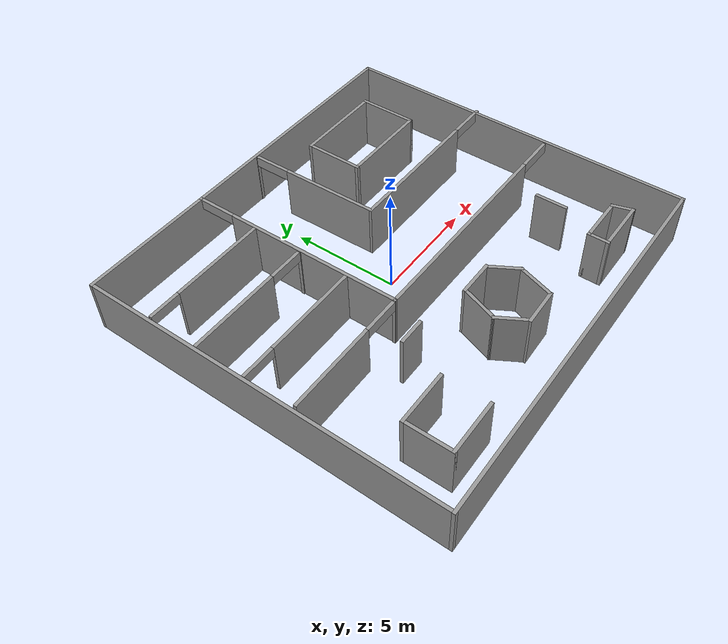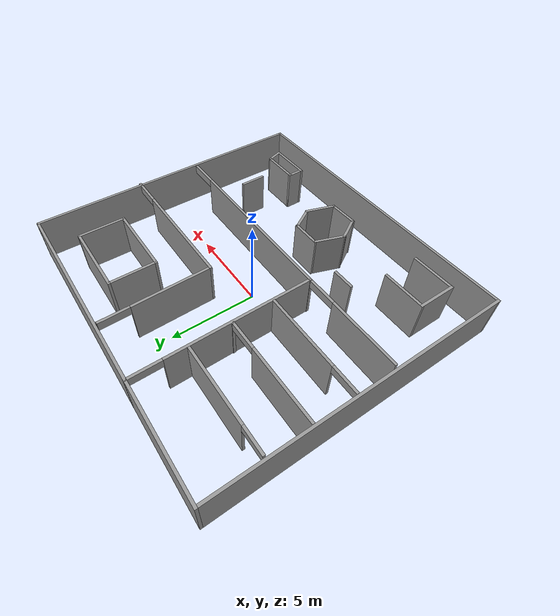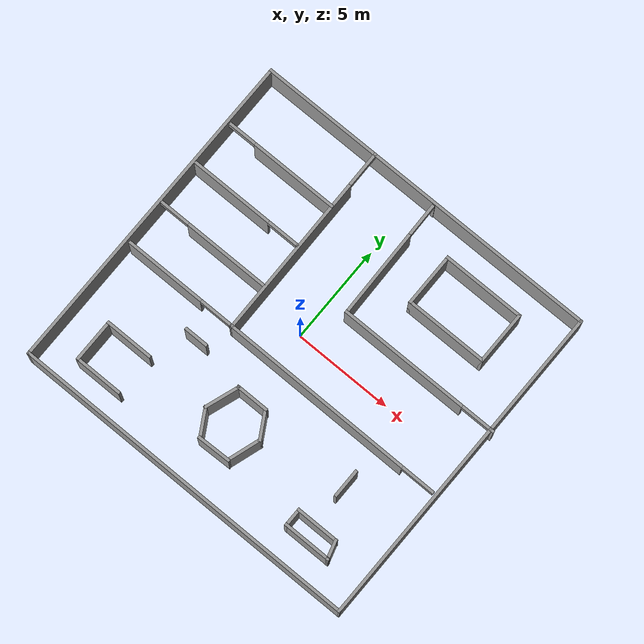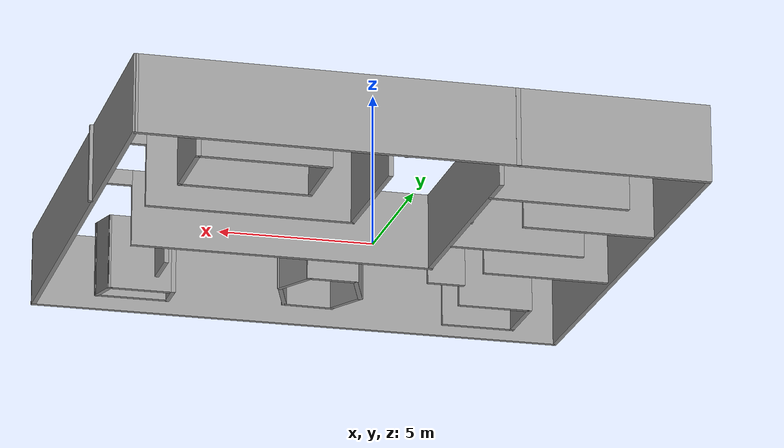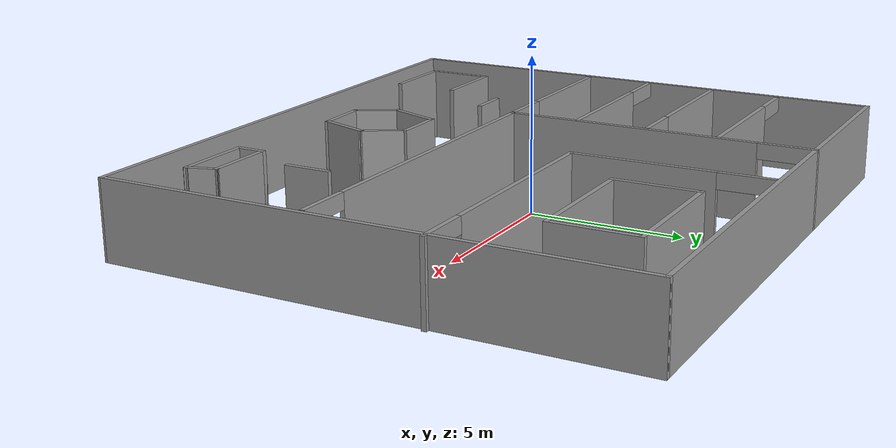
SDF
<?xml version='1.0'?>
<sdf version='1.6'>
  <model name='Training4'>
    <pose frame=''>0.481864 -0.211545 0 0 -0 0</pose>
    <link name='Wall_11'>
      <collision name='Wall_11_Collision'>
        <geometry>
          <box>
            <size>18 0.15 2.5</size>
          </box>
        </geometry>
        <pose frame=''>0 0 1.25 0 -0 0</pose>
      </collision>
      <visual name='Wall_11_Visual'>
        <pose frame=''>0 0 1.25 0 -0 0</pose>
        <geometry>
          <box>
            <size>18 0.15 2.5</size>
          </box>
        </geometry>
        <material>
          <script>
            <uri>file://media/materials/scripts/gazebo.material</uri>
            <name>Gazebo/Grey</name>
          </script>
          <ambient>1 1 1 1</ambient>
        </material>
        <meta>
          <layer>0</layer>
        </meta>
      </visual>
      <pose frame=''>-0.072914 -8.372 0 0 -0 3.14159</pose>
    </link>
    <link name='Wall_12'>
      <collision name='Wall_12_Collision'>
        <geometry>
          <box>
            <size>16.75 0.15 2.5</size>
          </box>
        </geometry>
        <pose frame=''>0 0 1.25 0 -0 0</pose>
      </collision>
      <visual name='Wall_12_Visual'>
        <pose frame=''>0 0 1.25 0 -0 0</pose>
        <geometry>
          <box>
            <size>16.75 0.15 2.5</size>
          </box>
        </geometry>
        <material>
          <script>
            <uri>file://media/materials/scripts/gazebo.material</uri>
            <name>Gazebo/Grey</name>
          </script>
          <ambient>1 1 1 1</ambient>
        </material>
        <meta>
          <layer>0</layer>
        </meta>
      </visual>
      <pose frame=''>-8.99791 -0.072003 0 0 -0 1.5708</pose>
    </link>
    <link name='Wall_14'>
      <pose frame=''>0.594413 5.16113 0 0 -0 -1.55326</pose>
      <visual name='Wall_14_Visual_0'>
        <pose frame=''>-3.11335 0 1.25 0 -0 0</pose>
        <geometry>
          <box>
            <size>0.024245 0.15 2.5</size>
          </box>
        </geometry>
        <material>
          <script>
            <uri>file://media/materials/scripts/gazebo.material</uri>
            <name>Gazebo/Grey</name>
          </script>
          <ambient>1 1 1 1</ambient>
        </material>
        <meta>
          <layer>0</layer>
        </meta>
      </visual>
      <collision name='Wall_14_Collision_0'>
        <geometry>
          <box>
            <size>0.024245 0.15 2.5</size>
          </box>
        </geometry>
        <pose frame=''>-3.11335 0 1.25 0 -0 0</pose>
      </collision>
      <visual name='Wall_14_Visual_1'>
        <pose frame=''>0.866196 0 1.25 0 -0 0</pose>
        <geometry>
          <box>
            <size>4.51855 0.15 2.5</size>
          </box>
        </geometry>
        <material>
          <script>
            <uri>file://media/materials/scripts/gazebo.material</uri>
            <name>Gazebo/Grey</name>
          </script>
          <ambient>1 1 1 1</ambient>
        </material>
        <meta>
          <layer>0</layer>
        </meta>
      </visual>
      <collision name='Wall_14_Collision_1'>
        <geometry>
          <box>
            <size>4.51855 0.15 2.5</size>
          </box>
        </geometry>
        <pose frame=''>0.866196 0 1.25 0 -0 0</pose>
      </collision>
      <visual name='Wall_14_Visual_2'>
        <pose frame=''>-2.24715 0 2.25 0 -0 0</pose>
        <geometry>
          <box>
            <size>1.70815 0.15 0.5</size>
          </box>
        </geometry>
        <material>
          <script>
            <uri>file://media/materials/scripts/gazebo.material</uri>
            <name>Gazebo/Grey</name>
          </script>
          <ambient>1 1 1 1</ambient>
        </material>
        <meta>
          <layer>0</layer>
        </meta>
      </visual>
      <collision name='Wall_14_Collision_2'>
        <geometry>
          <box>
            <size>1.70815 0.15 0.5</size>
          </box>
        </geometry>
        <pose frame=''>-2.24715 0 2.25 0 -0 0</pose>
      </collision>
    </link>
    <link name='Wall_15'>
      <pose frame=''>4.82292 2.05763 0 0 -0 0</pose>
      <visual name='Wall_15_Visual_0'>
        <pose frame=''>-0.900691 0 1.25 0 -0 0</pose>
        <geometry>
          <box>
            <size>6.69862 0.15 2.5</size>
          </box>
        </geometry>
        <material>
          <script>
            <uri>file://media/materials/scripts/gazebo.material</uri>
            <name>Gazebo/Grey</name>
          </script>
          <ambient>1 1 1 1</ambient>
        </material>
        <meta>
          <layer>0</layer>
        </meta>
      </visual>
      <collision name='Wall_15_Collision_0'>
        <geometry>
          <box>
            <size>6.69862 0.15 2.5</size>
          </box>
        </geometry>
        <pose frame=''>-0.900691 0 1.25 0 -0 0</pose>
      </collision>
      <visual name='Wall_15_Visual_1'>
        <pose frame=''>4.17141 0 1.25 0 -0 0</pose>
        <geometry>
          <box>
            <size>0.157179 0.15 2.5</size>
          </box>
        </geometry>
        <material>
          <script>
            <uri>file://media/materials/scripts/gazebo.material</uri>
            <name>Gazebo/Grey</name>
          </script>
          <ambient>1 1 1 1</ambient>
        </material>
        <meta>
          <layer>0</layer>
        </meta>
      </visual>
      <collision name='Wall_15_Collision_1'>
        <geometry>
          <box>
            <size>0.157179 0.15 2.5</size>
          </box>
        </geometry>
        <pose frame=''>4.17141 0 1.25 0 -0 0</pose>
      </collision>
      <visual name='Wall_15_Visual_2'>
        <pose frame=''>3.27072 0 2.25 0 -0 0</pose>
        <geometry>
          <box>
            <size>1.6442 0.15 0.5</size>
          </box>
        </geometry>
        <material>
          <script>
            <uri>file://media/materials/scripts/gazebo.material</uri>
            <name>Gazebo/Grey</name>
          </script>
          <ambient>1 1 1 1</ambient>
        </material>
        <meta>
          <layer>0</layer>
        </meta>
      </visual>
      <collision name='Wall_15_Collision_2'>
        <geometry>
          <box>
            <size>1.6442 0.15 0.5</size>
          </box>
        </geometry>
        <pose frame=''>3.27072 0 2.25 0 -0 0</pose>
      </collision>
    </link>
    <link name='Wall_17'>
      <pose frame=''>-2.8963 3.34187 0 0 -0 -1.56275</pose>
      <visual name='Wall_17_Visual_0'>
        <pose frame=''>-5.03876 0 1.25 0 -0 0</pose>
        <geometry>
          <box>
            <size>0.132347 0.15 2.5</size>
          </box>
        </geometry>
        <material>
          <script>
            <uri>file://media/materials/scripts/gazebo.material</uri>
            <name>Gazebo/Grey</name>
          </script>
          <ambient>1 1 1 1</ambient>
        </material>
        <meta>
          <layer>0</layer>
        </meta>
      </visual>
      <collision name='Wall_17_Collision_0'>
        <geometry>
          <box>
            <size>0.132347 0.15 2.5</size>
          </box>
        </geometry>
        <pose frame=''>-5.03876 0 1.25 0 -0 0</pose>
      </collision>
      <visual name='Wall_17_Visual_1'>
        <pose frame=''>0.929425 0 1.25 0 -0 0</pose>
        <geometry>
          <box>
            <size>8.35102 0.15 2.5</size>
          </box>
        </geometry>
        <material>
          <script>
            <uri>file://media/materials/scripts/gazebo.material</uri>
            <name>Gazebo/Grey</name>
          </script>
          <ambient>1 1 1 1</ambient>
        </material>
        <meta>
          <layer>0</layer>
        </meta>
      </visual>
      <collision name='Wall_17_Collision_1'>
        <geometry>
          <box>
            <size>8.35102 0.15 2.5</size>
          </box>
        </geometry>
        <pose frame=''>0.929425 0 1.25 0 -0 0</pose>
      </collision>
      <visual name='Wall_17_Visual_2'>
        <pose frame=''>-4.10934 0 2.25 0 -0 0</pose>
        <geometry>
          <box>
            <size>1.7265 0.15 0.5</size>
          </box>
        </geometry>
        <material>
          <script>
            <uri>file://media/materials/scripts/gazebo.material</uri>
            <name>Gazebo/Grey</name>
          </script>
          <ambient>1 1 1 1</ambient>
        </material>
        <meta>
          <layer>0</layer>
        </meta>
      </visual>
      <collision name='Wall_17_Collision_2'>
        <geometry>
          <box>
            <size>1.7265 0.15 0.5</size>
          </box>
        </geometry>
        <pose frame=''>-4.10934 0 2.25 0 -0 0</pose>
      </collision>
    </link>
    <link name='Wall_18'>
      <pose frame=''>2.9037 -1.70813 0 0 -0 -0.003512</pose>
      <visual name='Wall_18_Visual_0'>
        <pose frame=''>-0.894724 0 1.25 0 -0 0</pose>
        <geometry>
          <box>
            <size>9.87971 0.15 2.5</size>
          </box>
        </geometry>
        <material>
          <script>
            <uri>file://media/materials/scripts/gazebo.material</uri>
            <name>Gazebo/Grey</name>
          </script>
          <ambient>1 1 1 1</ambient>
        </material>
        <meta>
          <layer>0</layer>
        </meta>
      </visual>
      <collision name='Wall_18_Collision_0'>
        <geometry>
          <box>
            <size>9.87971 0.15 2.5</size>
          </box>
        </geometry>
        <pose frame=''>-0.894724 0 1.25 0 -0 0</pose>
      </collision>
      <visual name='Wall_18_Visual_1'>
        <pose frame=''>4.93986 0 2.25 0 -0 0</pose>
        <geometry>
          <box>
            <size>1.78945 0.15 0.5</size>
          </box>
        </geometry>
        <material>
          <script>
            <uri>file://media/materials/scripts/gazebo.material</uri>
            <name>Gazebo/Grey</name>
          </script>
          <ambient>1 1 1 1</ambient>
        </material>
        <meta>
          <layer>0</layer>
        </meta>
      </visual>
      <collision name='Wall_18_Collision_1'>
        <geometry>
          <box>
            <size>1.78945 0.15 0.5</size>
          </box>
        </geometry>
        <pose frame=''>4.93986 0 2.25 0 -0 0</pose>
      </collision>
    </link>
    <link name='Wall_20'>
      <pose frame=''>-5.86175 5.322 0 0 -0 3.14159</pose>
      <visual name='Wall_20_Visual_0'>
        <pose frame=''>-0.737345 0 1.25 0 -0 0</pose>
        <geometry>
          <box>
            <size>4.52531 0.15 2.5</size>
          </box>
        </geometry>
        <material>
          <script>
            <uri>file://media/materials/scripts/gazebo.material</uri>
            <name>Gazebo/Grey</name>
          </script>
          <ambient>1 1 1 1</ambient>
        </material>
        <meta>
          <layer>0</layer>
        </meta>
      </visual>
      <collision name='Wall_20_Collision_0'>
        <geometry>
          <box>
            <size>4.52531 0.15 2.5</size>
          </box>
        </geometry>
        <pose frame=''>-0.737345 0 1.25 0 -0 0</pose>
      </collision>
      <visual name='Wall_20_Visual_1'>
        <pose frame=''>2.26266 0 2.25 0 -0 0</pose>
        <geometry>
          <box>
            <size>1.47469 0.15 0.5</size>
          </box>
        </geometry>
        <material>
          <script>
            <uri>file://media/materials/scripts/gazebo.material</uri>
            <name>Gazebo/Grey</name>
          </script>
          <ambient>1 1 1 1</ambient>
        </material>
        <meta>
          <layer>0</layer>
        </meta>
      </visual>
      <collision name='Wall_20_Collision_1'>
        <geometry>
          <box>
            <size>1.47469 0.15 0.5</size>
          </box>
        </geometry>
        <pose frame=''>2.26266 0 2.25 0 -0 0</pose>
      </collision>
    </link>
    <link name='Wall_22'>
      <pose frame=''>-5.91526 2.96789 0 0 -0 3.14159</pose>
      <visual name='Wall_22_Visual_0'>
        <pose frame=''>-2.95361 0 1.25 0 -0 0</pose>
        <geometry>
          <box>
            <size>0.092778 0.15 2.5</size>
          </box>
        </geometry>
        <material>
          <script>
            <uri>file://media/materials/scripts/gazebo.material</uri>
            <name>Gazebo/Grey</name>
          </script>
          <ambient>1 1 1 1</ambient>
        </material>
        <meta>
          <layer>0</layer>
        </meta>
      </visual>
      <collision name='Wall_22_Collision_0'>
        <geometry>
          <box>
            <size>0.092778 0.15 2.5</size>
          </box>
        </geometry>
        <pose frame=''>-2.95361 0 1.25 0 -0 0</pose>
      </collision>
      <visual name='Wall_22_Visual_1'>
        <pose frame=''>0.85889 0 1.25 0 -0 0</pose>
        <geometry>
          <box>
            <size>4.28222 0.15 2.5</size>
          </box>
        </geometry>
        <material>
          <script>
            <uri>file://media/materials/scripts/gazebo.material</uri>
            <name>Gazebo/Grey</name>
          </script>
          <ambient>1 1 1 1</ambient>
        </material>
        <meta>
          <layer>0</layer>
        </meta>
      </visual>
      <collision name='Wall_22_Collision_1'>
        <geometry>
          <box>
            <size>4.28222 0.15 2.5</size>
          </box>
        </geometry>
        <pose frame=''>0.85889 0 1.25 0 -0 0</pose>
      </collision>
      <visual name='Wall_22_Visual_2'>
        <pose frame=''>-2.09472 0 2.25 0 -0 0</pose>
        <geometry>
          <box>
            <size>1.625 0.15 0.5</size>
          </box>
        </geometry>
        <material>
          <script>
            <uri>file://media/materials/scripts/gazebo.material</uri>
            <name>Gazebo/Grey</name>
          </script>
          <ambient>1 1 1 1</ambient>
        </material>
        <meta>
          <layer>0</layer>
        </meta>
      </visual>
      <collision name='Wall_22_Collision_2'>
        <geometry>
          <box>
            <size>1.625 0.15 0.5</size>
          </box>
        </geometry>
        <pose frame=''>-2.09472 0 2.25 0 -0 0</pose>
      </collision>
    </link>
    <link name='Wall_24'>
      <pose frame=''>-5.91526 0.613779 0 0 -0 3.14159</pose>
      <visual name='Wall_24_Visual_0'>
        <pose frame=''>-0.794381 0 1.25 0 -0 0</pose>
        <geometry>
          <box>
            <size>4.41124 0.15 2.5</size>
          </box>
        </geometry>
        <material>
          <script>
            <uri>file://media/materials/scripts/gazebo.material</uri>
            <name>Gazebo/Grey</name>
          </script>
          <ambient>1 1 1 1</ambient>
        </material>
        <meta>
          <layer>0</layer>
        </meta>
      </visual>
      <collision name='Wall_24_Collision_0'>
        <geometry>
          <box>
            <size>4.41124 0.15 2.5</size>
          </box>
        </geometry>
        <pose frame=''>-0.794381 0 1.25 0 -0 0</pose>
      </collision>
      <visual name='Wall_24_Visual_1'>
        <pose frame=''>2.20562 0 2.25 0 -0 0</pose>
        <geometry>
          <box>
            <size>1.58876 0.15 0.5</size>
          </box>
        </geometry>
        <material>
          <script>
            <uri>file://media/materials/scripts/gazebo.material</uri>
            <name>Gazebo/Grey</name>
          </script>
          <ambient>1 1 1 1</ambient>
        </material>
        <meta>
          <layer>0</layer>
        </meta>
      </visual>
      <collision name='Wall_24_Collision_1'>
        <geometry>
          <box>
            <size>1.58876 0.15 0.5</size>
          </box>
        </geometry>
        <pose frame=''>2.20562 0 2.25 0 -0 0</pose>
      </collision>
    </link>
    <link name='Wall_26'>
      <pose frame=''>-5.8213 -1.6879 0 0 -0 3.14159</pose>
      <visual name='Wall_26_Visual_0'>
        <pose frame=''>-2.93212 0 1.25 0 -0 0</pose>
        <geometry>
          <box>
            <size>0.135766 0.15 2.5</size>
          </box>
        </geometry>
        <material>
          <script>
            <uri>file://media/materials/scripts/gazebo.material</uri>
            <name>Gazebo/Grey</name>
          </script>
          <ambient>1 1 1 1</ambient>
        </material>
        <meta>
          <layer>0</layer>
        </meta>
      </visual>
      <collision name='Wall_26_Collision_0'>
        <geometry>
          <box>
            <size>0.135766 0.15 2.5</size>
          </box>
        </geometry>
        <pose frame=''>-2.93212 0 1.25 0 -0 0</pose>
      </collision>
      <visual name='Wall_26_Visual_1'>
        <pose frame=''>0.911126 0 1.25 0 -0 0</pose>
        <geometry>
          <box>
            <size>4.17775 0.15 2.5</size>
          </box>
        </geometry>
        <material>
          <script>
            <uri>file://media/materials/scripts/gazebo.material</uri>
            <name>Gazebo/Grey</name>
          </script>
          <ambient>1 1 1 1</ambient>
        </material>
        <meta>
          <layer>0</layer>
        </meta>
      </visual>
      <collision name='Wall_26_Collision_1'>
        <geometry>
          <box>
            <size>4.17775 0.15 2.5</size>
          </box>
        </geometry>
        <pose frame=''>0.911126 0 1.25 0 -0 0</pose>
      </collision>
      <visual name='Wall_26_Visual_2'>
        <pose frame=''>-2.02099 0 2.25 0 -0 0</pose>
        <geometry>
          <box>
            <size>1.68649 0.15 0.5</size>
          </box>
        </geometry>
        <material>
          <script>
            <uri>file://media/materials/scripts/gazebo.material</uri>
            <name>Gazebo/Grey</name>
          </script>
          <ambient>1 1 1 1</ambient>
        </material>
        <meta>
          <layer>0</layer>
        </meta>
      </visual>
      <collision name='Wall_26_Collision_2'>
        <geometry>
          <box>
            <size>1.68649 0.15 0.5</size>
          </box>
        </geometry>
        <pose frame=''>-2.02099 0 2.25 0 -0 0</pose>
      </collision>
    </link>
    <link name='Wall_39'>
      <collision name='Wall_39_Collision'>
        <geometry>
          <box>
            <size>4.25 0.15 2.5</size>
          </box>
        </geometry>
        <pose frame=''>0 0 1.25 0 -0 0</pose>
      </collision>
      <visual name='Wall_39_Visual'>
        <pose frame=''>0 0 1.25 0 -0 0</pose>
        <geometry>
          <box>
            <size>4.25 0.15 2.5</size>
          </box>
        </geometry>
        <material>
          <script>
            <uri>file://media/materials/scripts/gazebo.material</uri>
            <name>Gazebo/Grey</name>
          </script>
          <ambient>1 1 1 1</ambient>
        </material>
        <meta>
          <layer>0</layer>
        </meta>
      </visual>
      <pose frame=''>4.59019 6.82007 0 0 -0 3.14159</pose>
    </link>
    <link name='Wall_4'>
      <collision name='Wall_4_Collision'>
        <geometry>
          <box>
            <size>18 0.15 2.5</size>
          </box>
        </geometry>
        <pose frame=''>0 0 1.25 0 -0 0</pose>
      </collision>
      <visual name='Wall_4_Visual'>
        <pose frame=''>0 0 1.25 0 -0 0</pose>
        <geometry>
          <box>
            <size>18 0.15 2.5</size>
          </box>
        </geometry>
        <material>
          <script>
            <uri>file://media/materials/scripts/gazebo.material</uri>
            <name>Gazebo/Grey</name>
          </script>
          <ambient>1 1 1 1</ambient>
        </material>
        <meta>
          <layer>0</layer>
        </meta>
      </visual>
      <pose frame=''>-0.072914 8.37099 0 0 -0 0</pose>
    </link>
    <link name='Wall_40'>
      <collision name='Wall_40_Collision'>
        <geometry>
          <box>
            <size>2.75 0.15 2.5</size>
          </box>
        </geometry>
        <pose frame=''>0 0 1.25 0 -0 0</pose>
      </collision>
      <visual name='Wall_40_Visual'>
        <pose frame=''>0 0 1.25 0 -0 0</pose>
        <geometry>
          <box>
            <size>2.75 0.15 2.5</size>
          </box>
        </geometry>
        <material>
          <script>
            <uri>file://media/materials/scripts/gazebo.material</uri>
            <name>Gazebo/Grey</name>
          </script>
          <ambient>1 1 1 1</ambient>
        </material>
        <meta>
          <layer>0</layer>
        </meta>
      </visual>
      <pose frame=''>2.5402 5.52007 0 0 -0 -1.5708</pose>
    </link>
    <link name='Wall_41'>
      <collision name='Wall_41_Collision'>
        <geometry>
          <box>
            <size>4.25 0.15 2.5</size>
          </box>
        </geometry>
        <pose frame=''>0 0 1.25 0 -0 0</pose>
      </collision>
      <visual name='Wall_41_Visual'>
        <pose frame=''>0 0 1.25 0 -0 0</pose>
        <geometry>
          <box>
            <size>4.25 0.15 2.5</size>
          </box>
        </geometry>
        <material>
          <script>
            <uri>file://media/materials/scripts/gazebo.material</uri>
            <name>Gazebo/Grey</name>
          </script>
          <ambient>1 1 1 1</ambient>
        </material>
        <meta>
          <layer>0</layer>
        </meta>
      </visual>
      <pose frame=''>4.59019 4.22007 0 0 -0 0</pose>
    </link>
    <link name='Wall_42'>
      <collision name='Wall_42_Collision'>
        <geometry>
          <box>
            <size>2.75 0.15 2.5</size>
          </box>
        </geometry>
        <pose frame=''>0 0 1.25 0 -0 0</pose>
      </collision>
      <visual name='Wall_42_Visual'>
        <pose frame=''>0 0 1.25 0 -0 0</pose>
        <geometry>
          <box>
            <size>2.75 0.15 2.5</size>
          </box>
        </geometry>
        <material>
          <script>
            <uri>file://media/materials/scripts/gazebo.material</uri>
            <name>Gazebo/Grey</name>
          </script>
          <ambient>1 1 1 1</ambient>
        </material>
        <meta>
          <layer>0</layer>
        </meta>
      </visual>
      <pose frame=''>6.6402 5.52007 0 0 -0 1.5708</pose>
    </link>
    <link name='Wall_46'>
      <collision name='Wall_46_Collision'>
        <geometry>
          <box>
            <size>2.5 0.15 2.5</size>
          </box>
        </geometry>
        <pose frame=''>0 0 1.25 0 -0 0</pose>
      </collision>
      <visual name='Wall_46_Visual'>
        <pose frame=''>0 0 1.25 0 -0 0</pose>
        <geometry>
          <box>
            <size>2.5 0.15 2.5</size>
          </box>
        </geometry>
        <material>
          <script>
            <uri>file://media/materials/scripts/gazebo.material</uri>
            <name>Gazebo/Grey</name>
          </script>
          <ambient>1 1 1 1</ambient>
        </material>
        <meta>
          <layer>0</layer>
        </meta>
      </visual>
      <pose frame=''>5.8335 -6.93595 0 0 -0 3.14159</pose>
    </link>
    <link name='Wall_47'>
      <collision name='Wall_47_Collision'>
        <geometry>
          <box>
            <size>1 0.15 2.5</size>
          </box>
        </geometry>
        <pose frame=''>0 0 1.25 0 -0 0</pose>
      </collision>
      <visual name='Wall_47_Visual'>
        <pose frame=''>0 0 1.25 0 -0 0</pose>
        <geometry>
          <box>
            <size>1 0.15 2.5</size>
          </box>
        </geometry>
        <material>
          <script>
            <uri>file://media/materials/scripts/gazebo.material</uri>
            <name>Gazebo/Grey</name>
          </script>
          <ambient>1 1 1 1</ambient>
        </material>
        <meta>
          <layer>0</layer>
        </meta>
      </visual>
      <pose frame=''>4.6585 -6.51095 0 0 -0 1.5708</pose>
    </link>
    <link name='Wall_48'>
      <collision name='Wall_48_Collision'>
        <geometry>
          <box>
            <size>2.25 0.15 2.5</size>
          </box>
        </geometry>
        <pose frame=''>0 0 1.25 0 -0 0</pose>
      </collision>
      <visual name='Wall_48_Visual'>
        <pose frame=''>0 0 1.25 0 -0 0</pose>
        <geometry>
          <box>
            <size>2.25 0.15 2.5</size>
          </box>
        </geometry>
        <material>
          <script>
            <uri>file://media/materials/scripts/gazebo.material</uri>
            <name>Gazebo/Grey</name>
          </script>
          <ambient>1 1 1 1</ambient>
        </material>
        <meta>
          <layer>0</layer>
        </meta>
      </visual>
      <pose frame=''>5.7085 -6.08595 0 0 -0 0</pose>
    </link>
    <link name='Wall_49'>
      <collision name='Wall_49_Collision'>
        <geometry>
          <box>
            <size>1.036 0.15 2.5</size>
          </box>
        </geometry>
        <pose frame=''>0 0 1.25 0 -0 0</pose>
      </collision>
      <visual name='Wall_49_Visual'>
        <pose frame=''>0 0 1.25 0 -0 0</pose>
        <geometry>
          <box>
            <size>1.036 0.15 2.5</size>
          </box>
        </geometry>
        <material>
          <script>
            <uri>file://media/materials/scripts/gazebo.material</uri>
            <name>Gazebo/Grey</name>
          </script>
          <ambient>1 1 1 1</ambient>
        </material>
        <meta>
          <layer>0</layer>
        </meta>
      </visual>
      <pose frame=''>6.8835 -6.51095 0 0 -0 -1.28475</pose>
    </link>
    <link name='Wall_5'>
      <collision name='Wall_5_Collision'>
        <geometry>
          <box>
            <size>16.8931 0.15 2.5</size>
          </box>
        </geometry>
        <pose frame=''>0 0 1.25 0 -0 0</pose>
      </collision>
      <visual name='Wall_5_Visual'>
        <pose frame=''>0 0 1.25 0 -0 0</pose>
        <geometry>
          <box>
            <size>16.8931 0.15 2.5</size>
          </box>
        </geometry>
        <material>
          <script>
            <uri>file://media/materials/scripts/gazebo.material</uri>
            <name>Gazebo/Grey</name>
          </script>
          <ambient>1 1 1 1</ambient>
        </material>
        <meta>
          <layer>0</layer>
        </meta>
      </visual>
      <pose frame=''>8.87884 -0.000506 0 0 -0 -1.57399</pose>
    </link>
    <link name='Wall_53'>
      <collision name='Wall_53_Collision'>
        <geometry>
          <box>
            <size>1.71733 0.15 2.5</size>
          </box>
        </geometry>
        <pose frame=''>0 0 1.25 0 -0 0</pose>
      </collision>
      <visual name='Wall_53_Visual'>
        <pose frame=''>0 0 1.25 0 -0 0</pose>
        <geometry>
          <box>
            <size>1.71733 0.15 2.5</size>
          </box>
        </geometry>
        <material>
          <script>
            <uri>file://media/materials/scripts/gazebo.material</uri>
            <name>Gazebo/Grey</name>
          </script>
          <ambient>1 1 1 1</ambient>
        </material>
        <meta>
          <layer>0</layer>
        </meta>
      </visual>
      <pose frame=''>-0.101804 -3.59573 0 0 -0 3.14159</pose>
    </link>
    <link name='Wall_54'>
      <collision name='Wall_54_Collision'>
        <geometry>
          <box>
            <size>1.81771 0.15 2.5</size>
          </box>
        </geometry>
        <pose frame=''>0 0 1.25 0 -0 0</pose>
      </collision>
      <visual name='Wall_54_Visual'>
        <pose frame=''>0 0 1.25 0 -0 0</pose>
        <geometry>
          <box>
            <size>1.81771 0.15 2.5</size>
          </box>
        </geometry>
        <material>
          <script>
            <uri>file://media/materials/scripts/gazebo.material</uri>
            <name>Gazebo/Grey</name>
          </script>
          <ambient>1 1 1 1</ambient>
        </material>
        <meta>
          <layer>0</layer>
        </meta>
      </visual>
      <pose frame=''>-1.15841 -4.42401 0 0 -0 -1.9046</pose>
    </link>
    <link name='Wall_55'>
      <collision name='Wall_55_Collision'>
        <geometry>
          <box>
            <size>1.5 0.15 2.5</size>
          </box>
        </geometry>
        <pose frame=''>0 0 1.25 0 -0 0</pose>
      </collision>
      <visual name='Wall_55_Visual'>
        <pose frame=''>0 0 1.25 0 -0 0</pose>
        <geometry>
          <box>
            <size>1.5 0.15 2.5</size>
          </box>
        </geometry>
        <material>
          <script>
            <uri>file://media/materials/scripts/gazebo.material</uri>
            <name>Gazebo/Grey</name>
          </script>
          <ambient>1 1 1 1</ambient>
        </material>
        <meta>
          <layer>0</layer>
        </meta>
      </visual>
      <pose frame=''>-1.09411 -5.79641 0 0 -0 -1.0472</pose>
    </link>
    <link name='Wall_56'>
      <collision name='Wall_56_Collision'>
        <geometry>
          <box>
            <size>1.76504 0.15 2.5</size>
          </box>
        </geometry>
        <pose frame=''>0 0 1.25 0 -0 0</pose>
      </collision>
      <visual name='Wall_56_Visual'>
        <pose frame=''>0 0 1.25 0 -0 0</pose>
        <geometry>
          <box>
            <size>1.76504 0.15 2.5</size>
          </box>
        </geometry>
        <material>
          <script>
            <uri>file://media/materials/scripts/gazebo.material</uri>
            <name>Gazebo/Grey</name>
          </script>
          <ambient>1 1 1 1</ambient>
        </material>
        <meta>
          <layer>0</layer>
        </meta>
      </visual>
      <pose frame=''>0.050652 -6.4012 0 0 -0 0.025052</pose>
    </link>
    <link name='Wall_57'>
      <collision name='Wall_57_Collision'>
        <geometry>
          <box>
            <size>1.76416 0.15 2.5</size>
          </box>
        </geometry>
        <pose frame=''>0 0 1.25 0 -0 0</pose>
      </collision>
      <visual name='Wall_57_Visual'>
        <pose frame=''>0 0 1.25 0 -0 0</pose>
        <geometry>
          <box>
            <size>1.76416 0.15 2.5</size>
          </box>
        </geometry>
        <material>
          <script>
            <uri>file://media/materials/scripts/gazebo.material</uri>
            <name>Gazebo/Grey</name>
          </script>
          <ambient>1 1 1 1</ambient>
        </material>
        <meta>
          <layer>0</layer>
        </meta>
      </visual>
      <pose frame=''>1.10726 -5.57292 0 0 -0 1.25672</pose>
    </link>
    <link name='Wall_58'>
      <collision name='Wall_58_Collision'>
        <geometry>
          <box>
            <size>1.5 0.15 2.5</size>
          </box>
        </geometry>
        <pose frame=''>0 0 1.25 0 -0 0</pose>
      </collision>
      <visual name='Wall_58_Visual'>
        <pose frame=''>0 0 1.25 0 -0 0</pose>
        <geometry>
          <box>
            <size>1.5 0.15 2.5</size>
          </box>
        </geometry>
        <material>
          <script>
            <uri>file://media/materials/scripts/gazebo.material</uri>
            <name>Gazebo/Grey</name>
          </script>
          <ambient>1 1 1 1</ambient>
        </material>
        <meta>
          <layer>0</layer>
        </meta>
      </visual>
      <pose frame=''>1.0191 -4.22075 0 0 -0 2.0944</pose>
    </link>
    <link name='Wall_60'>
      <collision name='Wall_60_Collision'>
        <geometry>
          <box>
            <size>1.25 0.15 2.5</size>
          </box>
        </geometry>
        <pose frame=''>0 0 1.25 0 -0 0</pose>
      </collision>
      <visual name='Wall_60_Visual'>
        <pose frame=''>0 0 1.25 0 -0 0</pose>
        <geometry>
          <box>
            <size>1.25 0.15 2.5</size>
          </box>
        </geometry>
        <material>
          <script>
            <uri>file://media/materials/scripts/gazebo.material</uri>
            <name>Gazebo/Grey</name>
          </script>
          <ambient>1 1 1 1</ambient>
        </material>
        <meta>
          <layer>0</layer>
        </meta>
      </visual>
      <pose frame=''>-3.76796 -3.0786 0 0 -0 3.14159</pose>
    </link>
    <link name='Wall_62'>
      <collision name='Wall_62_Collision'>
        <geometry>
          <box>
            <size>2.5 0.15 2.5</size>
          </box>
        </geometry>
        <pose frame=''>0 0 1.25 0 -0 0</pose>
      </collision>
      <visual name='Wall_62_Visual'>
        <pose frame=''>0 0 1.25 0 -0 0</pose>
        <geometry>
          <box>
            <size>2.5 0.15 2.5</size>
          </box>
        </geometry>
        <material>
          <script>
            <uri>file://media/materials/scripts/gazebo.material</uri>
            <name>Gazebo/Grey</name>
          </script>
          <ambient>1 1 1 1</ambient>
        </material>
        <meta>
          <layer>0</layer>
        </meta>
      </visual>
      <pose frame=''>-5.98656 -5.07148 0 0 -0 3.14159</pose>
    </link>
    <link name='Wall_63'>
      <collision name='Wall_63_Collision'>
        <geometry>
          <box>
            <size>2.25 0.15 2.5</size>
          </box>
        </geometry>
        <pose frame=''>0 0 1.25 0 -0 0</pose>
      </collision>
      <visual name='Wall_63_Visual'>
        <pose frame=''>0 0 1.25 0 -0 0</pose>
        <geometry>
          <box>
            <size>2.25 0.15 2.5</size>
          </box>
        </geometry>
        <material>
          <script>
            <uri>file://media/materials/scripts/gazebo.material</uri>
            <name>Gazebo/Grey</name>
          </script>
          <ambient>1 1 1 1</ambient>
        </material>
        <meta>
          <layer>0</layer>
        </meta>
      </visual>
      <pose frame=''>-7.16156 -6.12148 0 0 -0 -1.5708</pose>
    </link>
    <link name='Wall_64'>
      <collision name='Wall_64_Collision'>
        <geometry>
          <box>
            <size>2.5 0.15 2.5</size>
          </box>
        </geometry>
        <pose frame=''>0 0 1.25 0 -0 0</pose>
      </collision>
      <visual name='Wall_64_Visual'>
        <pose frame=''>0 0 1.25 0 -0 0</pose>
        <geometry>
          <box>
            <size>2.5 0.15 2.5</size>
          </box>
        </geometry>
        <material>
          <script>
            <uri>file://media/materials/scripts/gazebo.material</uri>
            <name>Gazebo/Grey</name>
          </script>
          <ambient>1 1 1 1</ambient>
        </material>
        <meta>
          <layer>0</layer>
        </meta>
      </visual>
      <pose frame=''>-5.98656 -7.17148 0 0 -0 0</pose>
    </link>
    <link name='Wall_67'>
      <collision name='Wall_67_Collision'>
        <geometry>
          <box>
            <size>1.5 0.15 2.5</size>
          </box>
        </geometry>
        <pose frame=''>0 0 1.25 0 -0 0</pose>
      </collision>
      <visual name='Wall_67_Visual'>
        <pose frame=''>0 0 1.25 0 -0 0</pose>
        <geometry>
          <box>
            <size>1.5 0.15 2.5</size>
          </box>
        </geometry>
        <material>
          <script>
            <uri>file://media/materials/scripts/gazebo.material</uri>
            <name>Gazebo/Grey</name>
          </script>
          <ambient>1 1 1 1</ambient>
        </material>
        <meta>
          <layer>0</layer>
        </meta>
      </visual>
      <pose frame=''>5.50448 -3.8644 0 0 -0 -1.5708</pose>
    </link>
    <static>1</static>
  </model>
</sdf>
